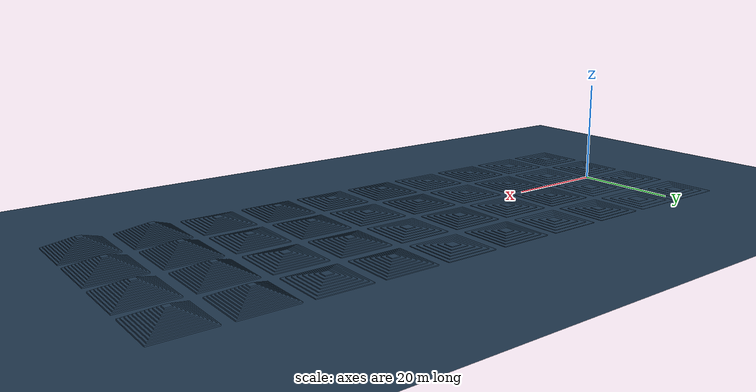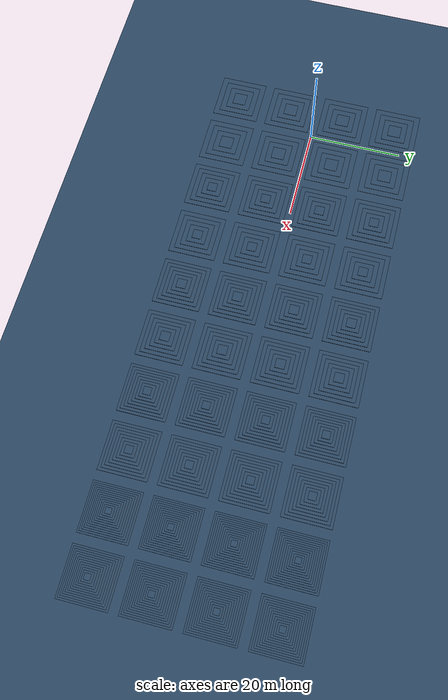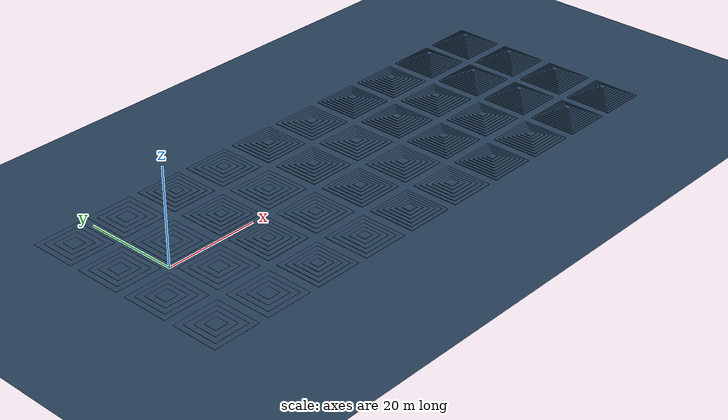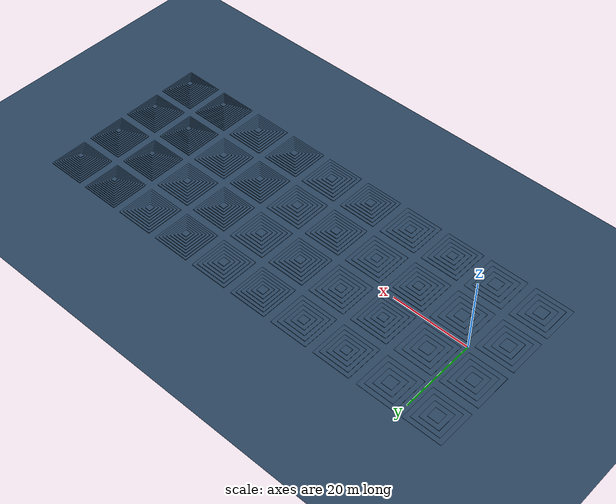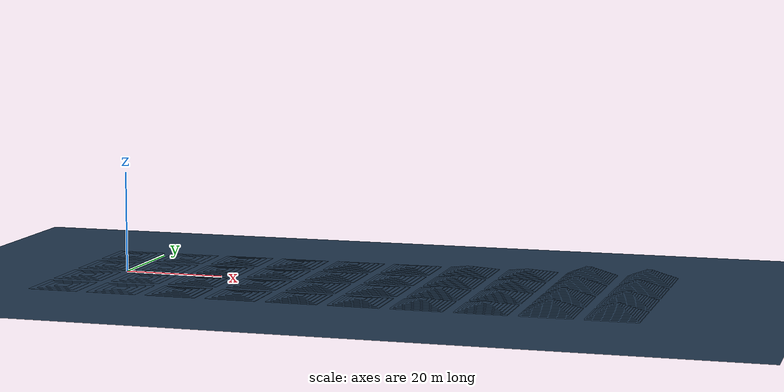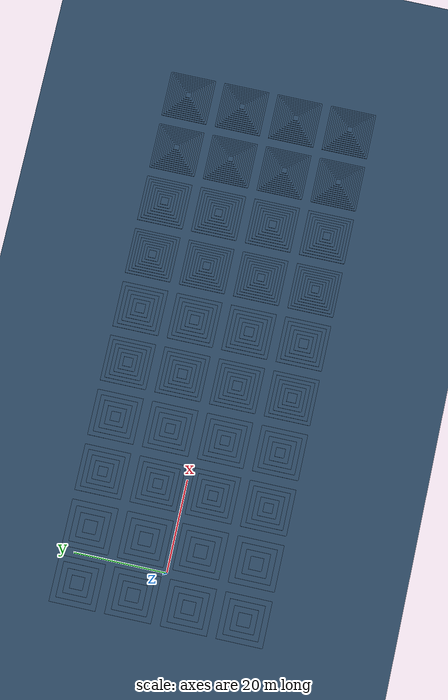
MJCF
<mujoco>
    <extension>
        <plugin plugin="mujoco.sdf.torus">
            <instance name="torus">
                <config key="radius1" value="0.077103"/>
                <config key="radius2" value="0.03"/>
            </instance>
        </plugin>
    </extension>

    <default>
        <default class="kyon_all">
            <joint damping="1.7" armature="0.215" frictionloss="5"/>
            <geom condim="3" solref="0.005 1.2" solimp="0.995 0.995 0.001 0.5 2" friction="0.7 0.005 0.001"/>
        </default>
        <default class="kyon_wheel">
            <joint damping="0.01" armature="0.1" frictionloss="0.01"/>
            <geom condim="3" solref="0.005 1.2" solimp="0.995 0.995 0.001 0.5 2" friction="0.7 0.005 0.001"/>
        </default>
        <default class="terrain">
            <geom solref="0.004 1.2" solimp="0.995 0.995 0.001 0.5 2" friction="0.7 0.005 0.001" type="plane" material="grid"/>
        </default>
    </default>

    <asset>
        <mesh name="torus">
            <plugin instance="torus"/>
        </mesh>

        <texture type="skybox" builtin="gradient" rgb1=".3 .5 .7" rgb2="0 0 0" width="512" height="512"/>
        <texture name="body" type="cube" builtin="flat" mark="cross" width="127" height="1278" rgb1="0.8 0.6 0.4" rgb2="0.8 0.6 0.4" markrgb="1 1 1" random="0.01"/>
        <material name="body" texture="body" texuniform="true" rgba="0.8 0.6 .4 1"/>
        <texture name="grid" type="2d" builtin="checker" width="512" height="512" rgb1=".1 .2 .3" rgb2=".2 .3 .4"/>
        <material name="grid" texture="grid" texrepeat="1 1" texuniform="true" reflectance=".2"/>
    </asset>
    <worldbody>
        <geom name="floor_0" size="0 0 .05" pos="0 0 0" type="plane" material="grid" condim="3" group="0" friction="0.6"/>
        <geom name="floor_1" size="0 0 .05" pos="0 0 0" type="plane" material="grid" condim="3" group="1" friction="0.6"/>
        <body name="staircourse" pos="0 0 0">
      <!-- Level 0 -->
      <body name="pyramid_lvl0_1" pos="-6 6 0">
        <geom name="lvl0_step_1_0_1" type="box" size="5.0 5.0 0.02" material="grid" pos="0 0 0.02" class="terrain"/>
        <geom name="lvl0_step_2_0_1" type="box" size="3.8 3.8 0.02" material="grid" pos="0 0 0.06" class="terrain"/>
        <geom name="lvl0_step_3_0_1" type="box" size="2.6 2.6 0.02" material="grid" pos="0 0 0.10" class="terrain"/>
        <geom name="lvl0_step_4_0_1" type="box" size="1.4 1.4 0.02" material="grid" pos="0 0 0.14" class="terrain"/>
      </body>
      <body name="pyramid_lvl0_2" pos="-6 -6 0">
        <geom name="lvl0_step_1_0_2" type="box" size="5.0 5.0 0.02" material="grid" pos="0 0 0.02" class="terrain"/>
        <geom name="lvl0_step_2_0_2" type="box" size="3.8 3.8 0.02" material="grid" pos="0 0 0.06" class="terrain"/>
        <geom name="lvl0_step_3_0_2" type="box" size="2.6 2.6 0.02" material="grid" pos="0 0 0.10" class="terrain"/>
        <geom name="lvl0_step_4_0_2" type="box" size="1.4 1.4 0.02" material="grid" pos="0 0 0.14" class="terrain"/>
      </body>
      <body name="pyramid_lvl0_3" pos="6 -6 0">
        <geom name="lvl0_step_1_0_3" type="box" size="5.0 5.0 0.02" material="grid" pos="0 0 0.02" class="terrain"/>
        <geom name="lvl0_step_2_0_3" type="box" size="3.8 3.8 0.02" material="grid" pos="0 0 0.06" class="terrain"/>
        <geom name="lvl0_step_3_0_3" type="box" size="2.6 2.6 0.02" material="grid" pos="0 0 0.10" class="terrain"/>
        <geom name="lvl0_step_4_0_3" type="box" size="1.4 1.4 0.02" material="grid" pos="0 0 0.14" class="terrain"/>
      </body>
      <body name="pyramid_lvl0_4" pos="6 6 0">
        <geom name="lvl0_step_1_0_4" type="box" size="5.0 5.0 0.02" material="grid" pos="0 0 0.02" class="terrain"/>
        <geom name="lvl0_step_2_0_4" type="box" size="3.8 3.8 0.02" material="grid" pos="0 0 0.06" class="terrain"/>
        <geom name="lvl0_step_3_0_4" type="box" size="2.6 2.6 0.02" material="grid" pos="0 0 0.10" class="terrain"/>
        <geom name="lvl0_step_4_0_4" type="box" size="1.4 1.4 0.02" material="grid" pos="0 0 0.14" class="terrain"/>
      </body>
      <body name="pyramid_lvl0_5" pos="-6 18 0">
        <geom name="lvl0_step_1_0_5" type="box" size="5.0 5.0 0.02" material="grid" pos="0 0 0.02" class="terrain"/>
        <geom name="lvl0_step_2_0_5" type="box" size="3.8 3.8 0.02" material="grid" pos="0 0 0.06" class="terrain"/>
        <geom name="lvl0_step_3_0_5" type="box" size="2.6 2.6 0.02" material="grid" pos="0 0 0.10" class="terrain"/>
        <geom name="lvl0_step_4_0_5" type="box" size="1.4 1.4 0.02" material="grid" pos="0 0 0.14" class="terrain"/>
      </body>
      <body name="pyramid_lvl0_6" pos="6 18 0">
        <geom name="lvl0_step_1_0_6" type="box" size="5.0 5.0 0.02" material="grid" pos="0 0 0.02" class="terrain"/>
        <geom name="lvl0_step_2_0_6" type="box" size="3.8 3.8 0.02" material="grid" pos="0 0 0.06" class="terrain"/>
        <geom name="lvl0_step_3_0_6" type="box" size="2.6 2.6 0.02" material="grid" pos="0 0 0.10" class="terrain"/>
        <geom name="lvl0_step_4_0_6" type="box" size="1.4 1.4 0.02" material="grid" pos="0 0 0.14" class="terrain"/>
      </body>
      <body name="pyramid_lvl0_7" pos="6 -18 0">
        <geom name="lvl0_step_1_0_7" type="box" size="5.0 5.0 0.02" material="grid" pos="0 0 0.02" class="terrain"/>
        <geom name="lvl0_step_2_0_7" type="box" size="3.8 3.8 0.02" material="grid" pos="0 0 0.06" class="terrain"/>
        <geom name="lvl0_step_3_0_7" type="box" size="2.6 2.6 0.02" material="grid" pos="0 0 0.10" class="terrain"/>
        <geom name="lvl0_step_4_0_7" type="box" size="1.4 1.4 0.02" material="grid" pos="0 0 0.14" class="terrain"/>
      </body>
      <body name="pyramid_lvl0_8" pos="-6 -18 0">
        <geom name="lvl0_step_1_0_8" type="box" size="5.0 5.0 0.02" material="grid" pos="0 0 0.02" class="terrain"/>
        <geom name="lvl0_step_2_0_8" type="box" size="3.8 3.8 0.02" material="grid" pos="0 0 0.06" class="terrain"/>
        <geom name="lvl0_step_3_0_8" type="box" size="2.6 2.6 0.02" material="grid" pos="0 0 0.10" class="terrain"/>
        <geom name="lvl0_step_4_0_8" type="box" size="1.4 1.4 0.02" material="grid" pos="0 0 0.14" class="terrain"/>
      </body>
      <!-- Level 1: low risers, generous treads, fewer steps -->
      <body name="pyramid_lvl1_1" pos="18 6 0">
        <geom name="lvl1_step_1_1" type="box" size="5.0 5.0 0.04" material="grid" pos="0 0 0.04" class="terrain"/>
        <geom name="lvl1_step_2_1" type="box" size="4.0 4.0 0.04" material="grid" pos="0 0 0.12" class="terrain"/>
        <geom name="lvl1_step_3_1" type="box" size="3.0 3.0 0.04" material="grid" pos="0 0 0.20" class="terrain"/>
        <geom name="lvl1_step_4_1" type="box" size="2.0 2.0 0.04" material="grid" pos="0 0 0.28" class="terrain"/>
        <geom name="lvl1_step_5_1" type="box" size="1.0 1.0 0.04" material="grid" pos="0 0 0.36" class="terrain"/>
      </body>
      <body name="pyramid_lvl1_2" pos="18 -6 0">
        <geom name="lvl1_step_1_1_2" type="box" size="5.0 5.0 0.04" material="grid" pos="0 0 0.04" class="terrain"/>
        <geom name="lvl1_step_2_1_2" type="box" size="4.0 4.0 0.04" material="grid" pos="0 0 0.12" class="terrain"/>
        <geom name="lvl1_step_3_1_2" type="box" size="3.0 3.0 0.04" material="grid" pos="0 0 0.20" class="terrain"/>
        <geom name="lvl1_step_4_1_2" type="box" size="2.0 2.0 0.04" material="grid" pos="0 0 0.28" class="terrain"/>
        <geom name="lvl1_step_5_1_2" type="box" size="1.0 1.0 0.04" material="grid" pos="0 0 0.36" class="terrain"/>
      </body>
      <body name="pyramid_lvl1_3" pos="30 -6 0">
        <geom name="lvl1_step_1_1_3" type="box" size="5.0 5.0 0.04" material="grid" pos="0 0 0.04" class="terrain"/>
        <geom name="lvl1_step_2_1_3" type="box" size="4.0 4.0 0.04" material="grid" pos="0 0 0.12" class="terrain"/>
        <geom name="lvl1_step_3_1_3" type="box" size="3.0 3.0 0.04" material="grid" pos="0 0 0.20" class="terrain"/>
        <geom name="lvl1_step_4_1_3" type="box" size="2.0 2.0 0.04" material="grid" pos="0 0 0.28" class="terrain"/>
        <geom name="lvl1_step_5_1_3" type="box" size="1.0 1.0 0.04" material="grid" pos="0 0 0.36" class="terrain"/>
      </body>
      <body name="pyramid_lvl1_4" pos="30 6 0">
        <geom name="lvl1_step_1_1_4" type="box" size="5.0 5.0 0.04" material="grid" pos="0 0 0.04" class="terrain"/>
        <geom name="lvl1_step_2_1_4" type="box" size="4.0 4.0 0.04" material="grid" pos="0 0 0.12" class="terrain"/>
        <geom name="lvl1_step_3_1_4" type="box" size="3.0 3.0 0.04" material="grid" pos="0 0 0.20" class="terrain"/>
        <geom name="lvl1_step_4_1_4" type="box" size="2.0 2.0 0.04" material="grid" pos="0 0 0.28" class="terrain"/>
        <geom name="lvl1_step_5_1_4" type="box" size="1.0 1.0 0.04" material="grid" pos="0 0 0.36" class="terrain"/>
      </body>
      <body name="pyramid_lvl1_5" pos="18 18 0">
        <geom name="lvl1_step_1_1_5" type="box" size="5.0 5.0 0.04" material="grid" pos="0 0 0.04" class="terrain"/>
        <geom name="lvl1_step_2_1_5" type="box" size="4.0 4.0 0.04" material="grid" pos="0 0 0.12" class="terrain"/>
        <geom name="lvl1_step_3_1_5" type="box" size="3.0 3.0 0.04" material="grid" pos="0 0 0.20" class="terrain"/>
        <geom name="lvl1_step_4_1_5" type="box" size="2.0 2.0 0.04" material="grid" pos="0 0 0.28" class="terrain"/>
        <geom name="lvl1_step_5_1_5" type="box" size="1.0 1.0 0.04" material="grid" pos="0 0 0.36" class="terrain"/>
      </body>
      <body name="pyramid_lvl1_6" pos="30 18 0">
        <geom name="lvl1_step_1_1_6" type="box" size="5.0 5.0 0.04" material="grid" pos="0 0 0.04" class="terrain"/>
        <geom name="lvl1_step_2_1_6" type="box" size="4.0 4.0 0.04" material="grid" pos="0 0 0.12" class="terrain"/>
        <geom name="lvl1_step_3_1_6" type="box" size="3.0 3.0 0.04" material="grid" pos="0 0 0.20" class="terrain"/>
        <geom name="lvl1_step_4_1_6" type="box" size="2.0 2.0 0.04" material="grid" pos="0 0 0.28" class="terrain"/>
        <geom name="lvl1_step_5_1_6" type="box" size="1.0 1.0 0.04" material="grid" pos="0 0 0.36" class="terrain"/>
      </body>
      <body name="pyramid_lvl1_7" pos="18 -18 0">
        <geom name="lvl1_step_1_1_7" type="box" size="5.0 5.0 0.04" material="grid" pos="0 0 0.04" class="terrain"/>
        <geom name="lvl1_step_2_1_7" type="box" size="4.0 4.0 0.04" material="grid" pos="0 0 0.12" class="terrain"/>
        <geom name="lvl1_step_3_1_7" type="box" size="3.0 3.0 0.04" material="grid" pos="0 0 0.20" class="terrain"/>
        <geom name="lvl1_step_4_1_7" type="box" size="2.0 2.0 0.04" material="grid" pos="0 0 0.28" class="terrain"/>
        <geom name="lvl1_step_5_1_7" type="box" size="1.0 1.0 0.04" material="grid" pos="0 0 0.36" class="terrain"/>
      </body>
      <body name="pyramid_lvl1_8" pos="30 -18 0">
        <geom name="lvl1_step_1_1_8" type="box" size="5.0 5.0 0.04" material="grid" pos="0 0 0.04" class="terrain"/>
        <geom name="lvl1_step_2_1_8" type="box" size="4.0 4.0 0.04" material="grid" pos="0 0 0.12" class="terrain"/>
        <geom name="lvl1_step_3_1_8" type="box" size="3.0 3.0 0.04" material="grid" pos="0 0 0.20" class="terrain"/>
        <geom name="lvl1_step_4_1_8" type="box" size="2.0 2.0 0.04" material="grid" pos="0 0 0.28" class="terrain"/>
        <geom name="lvl1_step_5_1_8" type="box" size="1.0 1.0 0.04" material="grid" pos="0 0 0.36" class="terrain"/>
      </body>
      <!-- Level 2: medium risers, tighter treads, more steps -->
      <body name="pyramid_lvl2_1" pos="42 -6 0">
        <geom name="lvl2_step_1_2_1" type="box" size="5.0 5.0 0.06" material="grid" pos="0 0 0.06" class="terrain"/>
        <geom name="lvl2_step_2_2_1" type="box" size="4.2 4.2 0.06" material="grid" pos="0 0 0.18" class="terrain"/>
        <geom name="lvl2_step_3_2_1" type="box" size="3.4 3.4 0.06" material="grid" pos="0 0 0.30" class="terrain"/>
        <geom name="lvl2_step_4_2_1" type="box" size="2.6 2.6 0.06" material="grid" pos="0 0 0.42" class="terrain"/>
        <geom name="lvl2_step_5_2_1" type="box" size="1.8 1.8 0.06" material="grid" pos="0 0 0.54" class="terrain"/>
        <geom name="lvl2_step_6_2_1" type="box" size="1.0 1.0 0.06" material="grid" pos="0 0 0.66" class="terrain"/>
      </body>
      <body name="pyramid_lvl2_2" pos="42 6 0">
        <geom name="lvl2_step_1_2_2" type="box" size="5.0 5.0 0.06" material="grid" pos="0 0 0.06" class="terrain"/>
        <geom name="lvl2_step_2_2_2" type="box" size="4.2 4.2 0.06" material="grid" pos="0 0 0.18" class="terrain"/>
        <geom name="lvl2_step_3_2_2" type="box" size="3.4 3.4 0.06" material="grid" pos="0 0 0.30" class="terrain"/>
        <geom name="lvl2_step_4_2_2" type="box" size="2.6 2.6 0.06" material="grid" pos="0 0 0.42" class="terrain"/>
        <geom name="lvl2_step_5_2_2" type="box" size="1.8 1.8 0.06" material="grid" pos="0 0 0.54" class="terrain"/>
        <geom name="lvl2_step_6_2_2" type="box" size="1.0 1.0 0.06" material="grid" pos="0 0 0.66" class="terrain"/>
      </body>
      <body name="pyramid_lvl2_3" pos="54 -6 0">
        <geom name="lvl2_step_1_2_3" type="box" size="5.0 5.0 0.06" material="grid" pos="0 0 0.06" class="terrain"/>
        <geom name="lvl2_step_2_2_3" type="box" size="4.2 4.2 0.06" material="grid" pos="0 0 0.18" class="terrain"/>
        <geom name="lvl2_step_3_2_3" type="box" size="3.4 3.4 0.06" material="grid" pos="0 0 0.30" class="terrain"/>
        <geom name="lvl2_step_4_2_3" type="box" size="2.6 2.6 0.06" material="grid" pos="0 0 0.42" class="terrain"/>
        <geom name="lvl2_step_5_2_3" type="box" size="1.8 1.8 0.06" material="grid" pos="0 0 0.54" class="terrain"/>
        <geom name="lvl2_step_6_2_3" type="box" size="1.0 1.0 0.06" material="grid" pos="0 0 0.66" class="terrain"/>
      </body>
      <body name="pyramid_lvl2_4" pos="54 6 0">
        <geom name="lvl2_step_1_2_4" type="box" size="5.0 5.0 0.06" material="grid" pos="0 0 0.06" class="terrain"/>
        <geom name="lvl2_step_2_2_4" type="box" size="4.2 4.2 0.06" material="grid" pos="0 0 0.18" class="terrain"/>
        <geom name="lvl2_step_3_2_4" type="box" size="3.4 3.4 0.06" material="grid" pos="0 0 0.30" class="terrain"/>
        <geom name="lvl2_step_4_2_4" type="box" size="2.6 2.6 0.06" material="grid" pos="0 0 0.42" class="terrain"/>
        <geom name="lvl2_step_5_2_4" type="box" size="1.8 1.8 0.06" material="grid" pos="0 0 0.54" class="terrain"/>
        <geom name="lvl2_step_6_2_4" type="box" size="1.0 1.0 0.06" material="grid" pos="0 0 0.66" class="terrain"/>
      </body>
      <body name="pyramid_lvl2_5" pos="42 18 0">
        <geom name="lvl2_step_1_2_5" type="box" size="5.0 5.0 0.06" material="grid" pos="0 0 0.06" class="terrain"/>
        <geom name="lvl2_step_2_2_5" type="box" size="4.2 4.2 0.06" material="grid" pos="0 0 0.18" class="terrain"/>
        <geom name="lvl2_step_3_2_5" type="box" size="3.4 3.4 0.06" material="grid" pos="0 0 0.30" class="terrain"/>
        <geom name="lvl2_step_4_2_5" type="box" size="2.6 2.6 0.06" material="grid" pos="0 0 0.42" class="terrain"/>
        <geom name="lvl2_step_5_2_5" type="box" size="1.8 1.8 0.06" material="grid" pos="0 0 0.54" class="terrain"/>
        <geom name="lvl2_step_6_2_5" type="box" size="1.0 1.0 0.06" material="grid" pos="0 0 0.66" class="terrain"/>
      </body>
      <body name="pyramid_lvl2_6" pos="54 18 0">
        <geom name="lvl2_step_1_2_6" type="box" size="5.0 5.0 0.06" material="grid" pos="0 0 0.06" class="terrain"/>
        <geom name="lvl2_step_2_2_6" type="box" size="4.2 4.2 0.06" material="grid" pos="0 0 0.18" class="terrain"/>
        <geom name="lvl2_step_3_2_6" type="box" size="3.4 3.4 0.06" material="grid" pos="0 0 0.30" class="terrain"/>
        <geom name="lvl2_step_4_2_6" type="box" size="2.6 2.6 0.06" material="grid" pos="0 0 0.42" class="terrain"/>
        <geom name="lvl2_step_5_2_6" type="box" size="1.8 1.8 0.06" material="grid" pos="0 0 0.54" class="terrain"/>
        <geom name="lvl2_step_6_2_6" type="box" size="1.0 1.0 0.06" material="grid" pos="0 0 0.66" class="terrain"/>
      </body>
      <body name="pyramid_lvl2_7" pos="42 -18 0">
        <geom name="lvl2_step_1_2_7" type="box" size="5.0 5.0 0.06" material="grid" pos="0 0 0.06" class="terrain"/>
        <geom name="lvl2_step_2_2_7" type="box" size="4.2 4.2 0.06" material="grid" pos="0 0 0.18" class="terrain"/>
        <geom name="lvl2_step_3_2_7" type="box" size="3.4 3.4 0.06" material="grid" pos="0 0 0.30" class="terrain"/>
        <geom name="lvl2_step_4_2_7" type="box" size="2.6 2.6 0.06" material="grid" pos="0 0 0.42" class="terrain"/>
        <geom name="lvl2_step_5_2_7" type="box" size="1.8 1.8 0.06" material="grid" pos="0 0 0.54" class="terrain"/>
        <geom name="lvl2_step_6_2_7" type="box" size="1.0 1.0 0.06" material="grid" pos="0 0 0.66" class="terrain"/>
      </body>
      <body name="pyramid_lvl2_8" pos="54 -18 0">
        <geom name="lvl2_step_1_2_8" type="box" size="5.0 5.0 0.06" material="grid" pos="0 0 0.06" class="terrain"/>
        <geom name="lvl2_step_2_2_8" type="box" size="4.2 4.2 0.06" material="grid" pos="0 0 0.18" class="terrain"/>
        <geom name="lvl2_step_3_2_8" type="box" size="3.4 3.4 0.06" material="grid" pos="0 0 0.30" class="terrain"/>
        <geom name="lvl2_step_4_2_8" type="box" size="2.6 2.6 0.06" material="grid" pos="0 0 0.42" class="terrain"/>
        <geom name="lvl2_step_5_2_8" type="box" size="1.8 1.8 0.06" material="grid" pos="0 0 0.54" class="terrain"/>
        <geom name="lvl2_step_6_2_8" type="box" size="1.0 1.0 0.06" material="grid" pos="0 0 0.66" class="terrain"/>
      </body>
      <!-- Level 3: high risers, minimal tread width, six steps -->
      <body name="pyramid_lvl3_1" pos="66 6 0">
        <geom name="lvl3_step_1_3_1" type="box" size="5.0 5.0 0.08" material="grid" pos="0 0 0.08" class="terrain"/>
        <geom name="lvl3_step_2_3_1" type="box" size="4.4 4.4 0.08" material="grid" pos="0 0 0.24" class="terrain"/>
        <geom name="lvl3_step_3_3_1" type="box" size="3.8 3.8 0.08" material="grid" pos="0 0 0.40" class="terrain"/>
        <geom name="lvl3_step_4_3_1" type="box" size="3.2 3.2 0.08" material="grid" pos="0 0 0.56" class="terrain"/>
        <geom name="lvl3_step_5_3_1" type="box" size="2.6 2.6 0.08" material="grid" pos="0 0 0.72" class="terrain"/>
        <geom name="lvl3_step_6_3_1" type="box" size="2.0 2.0 0.08" material="grid" pos="0 0 0.88" class="terrain"/>
        <geom name="lvl3_step_7_3_1" type="box" size="1.4 1.4 0.08" material="grid" pos="0 0 1.04" class="terrain"/>
        <geom name="lvl3_step_8_3_1" type="box" size="0.8 0.8 0.08" material="grid" pos="0 0 1.20" class="terrain"/>
      </body>
      <body name="pyramid_lvl3_2" pos="66 -6 0">
        <geom name="lvl3_step_1_3_2" type="box" size="5.0 5.0 0.08" material="grid" pos="0 0 0.08" class="terrain"/>
        <geom name="lvl3_step_2_3_2" type="box" size="4.4 4.4 0.08" material="grid" pos="0 0 0.24" class="terrain"/>
        <geom name="lvl3_step_3_3_2" type="box" size="3.8 3.8 0.08" material="grid" pos="0 0 0.40" class="terrain"/>
        <geom name="lvl3_step_4_3_2" type="box" size="3.2 3.2 0.08" material="grid" pos="0 0 0.56" class="terrain"/>
        <geom name="lvl3_step_5_3_2" type="box" size="2.6 2.6 0.08" material="grid" pos="0 0 0.72" class="terrain"/>
        <geom name="lvl3_step_6_3_2" type="box" size="2.0 2.0 0.08" material="grid" pos="0 0 0.88" class="terrain"/>
        <geom name="lvl3_step_7_3_2" type="box" size="1.4 1.4 0.08" material="grid" pos="0 0 1.04" class="terrain"/>
        <geom name="lvl3_step_8_3_2" type="box" size="0.8 0.8 0.08" material="grid" pos="0 0 1.20" class="terrain"/>
      </body>
      <body name="pyramid_lvl3_3" pos="78 6 0">
        <geom name="lvl3_step_1_3_3" type="box" size="5.0 5.0 0.08" material="grid" pos="0 0 0.08" class="terrain"/>
        <geom name="lvl3_step_2_3_3" type="box" size="4.4 4.4 0.08" material="grid" pos="0 0 0.24" class="terrain"/>
        <geom name="lvl3_step_3_3_3" type="box" size="3.8 3.8 0.08" material="grid" pos="0 0 0.40" class="terrain"/>
        <geom name="lvl3_step_4_3_3" type="box" size="3.2 3.2 0.08" material="grid" pos="0 0 0.56" class="terrain"/>
        <geom name="lvl3_step_5_3_3" type="box" size="2.6 2.6 0.08" material="grid" pos="0 0 0.72" class="terrain"/>
        <geom name="lvl3_step_6_3_3" type="box" size="2.0 2.0 0.08" material="grid" pos="0 0 0.88" class="terrain"/>
        <geom name="lvl3_step_7_3_3" type="box" size="1.4 1.4 0.08" material="grid" pos="0 0 1.04" class="terrain"/>
        <geom name="lvl3_step_8_3_3" type="box" size="0.8 0.8 0.08" material="grid" pos="0 0 1.20" class="terrain"/>
      </body>
      <body name="pyramid_lvl3_4" pos="78 -6 0">
        <geom name="lvl3_step_1_3_4" type="box" size="5.0 5.0 0.08" material="grid" pos="0 0 0.08" class="terrain"/>
        <geom name="lvl3_step_2_3_4" type="box" size="4.4 4.4 0.08" material="grid" pos="0 0 0.24" class="terrain"/>
        <geom name="lvl3_step_3_3_4" type="box" size="3.8 3.8 0.08" material="grid" pos="0 0 0.40" class="terrain"/>
        <geom name="lvl3_step_4_3_4" type="box" size="3.2 3.2 0.08" material="grid" pos="0 0 0.56" class="terrain"/>
        <geom name="lvl3_step_5_3_4" type="box" size="2.6 2.6 0.08" material="grid" pos="0 0 0.72" class="terrain"/>
        <geom name="lvl3_step_6_3_4" type="box" size="2.0 2.0 0.08" material="grid" pos="0 0 0.88" class="terrain"/>
        <geom name="lvl3_step_7_3_4" type="box" size="1.4 1.4 0.08" material="grid" pos="0 0 1.04" class="terrain"/>
        <geom name="lvl3_step_8_3_4" type="box" size="0.8 0.8 0.08" material="grid" pos="0 0 1.20" class="terrain"/>
      </body>
      <body name="pyramid_lvl3_5" pos="66 18 0">
        <geom name="lvl3_step_1_3_5" type="box" size="5.0 5.0 0.08" material="grid" pos="0 0 0.08" class="terrain"/>
        <geom name="lvl3_step_2_3_5" type="box" size="4.4 4.4 0.08" material="grid" pos="0 0 0.24" class="terrain"/>
        <geom name="lvl3_step_3_3_5" type="box" size="3.8 3.8 0.08" material="grid" pos="0 0 0.40" class="terrain"/>
        <geom name="lvl3_step_4_3_5" type="box" size="3.2 3.2 0.08" material="grid" pos="0 0 0.56" class="terrain"/>
        <geom name="lvl3_step_5_3_5" type="box" size="2.6 2.6 0.08" material="grid" pos="0 0 0.72" class="terrain"/>
        <geom name="lvl3_step_6_3_5" type="box" size="2.0 2.0 0.08" material="grid" pos="0 0 0.88" class="terrain"/>
        <geom name="lvl3_step_7_3_5" type="box" size="1.4 1.4 0.08" material="grid" pos="0 0 1.04" class="terrain"/>
        <geom name="lvl3_step_8_3_5" type="box" size="0.8 0.8 0.08" material="grid" pos="0 0 1.20" class="terrain"/>
      </body>
      <body name="pyramid_lvl3_6" pos="78 18 0">
        <geom name="lvl3_step_1_3_6" type="box" size="5.0 5.0 0.08" material="grid" pos="0 0 0.08" class="terrain"/>
        <geom name="lvl3_step_2_3_6" type="box" size="4.4 4.4 0.08" material="grid" pos="0 0 0.24" class="terrain"/>
        <geom name="lvl3_step_3_3_6" type="box" size="3.8 3.8 0.08" material="grid" pos="0 0 0.40" class="terrain"/>
        <geom name="lvl3_step_4_3_6" type="box" size="3.2 3.2 0.08" material="grid" pos="0 0 0.56" class="terrain"/>
        <geom name="lvl3_step_5_3_6" type="box" size="2.6 2.6 0.08" material="grid" pos="0 0 0.72" class="terrain"/>
        <geom name="lvl3_step_6_3_6" type="box" size="2.0 2.0 0.08" material="grid" pos="0 0 0.88" class="terrain"/>
        <geom name="lvl3_step_7_3_6" type="box" size="1.4 1.4 0.08" material="grid" pos="0 0 1.04" class="terrain"/>
        <geom name="lvl3_step_8_3_6" type="box" size="0.8 0.8 0.08" material="grid" pos="0 0 1.20" class="terrain"/>
      </body>
      <body name="pyramid_lvl3_7" pos="66 -18 0">
        <geom name="lvl3_step_1_3_7" type="box" size="5.0 5.0 0.08" material="grid" pos="0 0 0.08" class="terrain"/>
        <geom name="lvl3_step_2_3_7" type="box" size="4.4 4.4 0.08" material="grid" pos="0 0 0.24" class="terrain"/>
        <geom name="lvl3_step_3_3_7" type="box" size="3.8 3.8 0.08" material="grid" pos="0 0 0.40" class="terrain"/>
        <geom name="lvl3_step_4_3_7" type="box" size="3.2 3.2 0.08" material="grid" pos="0 0 0.56" class="terrain"/>
        <geom name="lvl3_step_5_3_7" type="box" size="2.6 2.6 0.08" material="grid" pos="0 0 0.72" class="terrain"/>
        <geom name="lvl3_step_6_3_7" type="box" size="2.0 2.0 0.08" material="grid" pos="0 0 0.88" class="terrain"/>
        <geom name="lvl3_step_7_3_7" type="box" size="1.4 1.4 0.08" material="grid" pos="0 0 1.04" class="terrain"/>
        <geom name="lvl3_step_8_3_7" type="box" size="0.8 0.8 0.08" material="grid" pos="0 0 1.20" class="terrain"/>
      </body>
      <body name="pyramid_lvl3_8" pos="78 -18 0">
        <geom name="lvl3_step_1_3_8" type="box" size="5.0 5.0 0.08" material="grid" pos="0 0 0.08" class="terrain"/>
        <geom name="lvl3_step_2_3_8" type="box" size="4.4 4.4 0.08" material="grid" pos="0 0 0.24" class="terrain"/>
        <geom name="lvl3_step_3_3_8" type="box" size="3.8 3.8 0.08" material="grid" pos="0 0 0.40" class="terrain"/>
        <geom name="lvl3_step_4_3_8" type="box" size="3.2 3.2 0.08" material="grid" pos="0 0 0.56" class="terrain"/>
        <geom name="lvl3_step_5_3_8" type="box" size="2.6 2.6 0.08" material="grid" pos="0 0 0.72" class="terrain"/>
        <geom name="lvl3_step_6_3_8" type="box" size="2.0 2.0 0.08" material="grid" pos="0 0 0.88" class="terrain"/>
        <geom name="lvl3_step_7_3_8" type="box" size="1.4 1.4 0.08" material="grid" pos="0 0 1.04" class="terrain"/>
        <geom name="lvl3_step_8_3_8" type="box" size="0.8 0.8 0.08" material="grid" pos="0 0 1.20" class="terrain"/>
      </body>
      <!-- Level 4: extreme risers, very tight treads, seven steps -->
      <body name="pyramid_lvl4_1" pos="90 6 0">
        <geom name="lvl4_step_1_4_1" type="box" size="5.0 5.0 0.1" material="grid" pos="0 0 0.10" class="terrain"/>
        <geom name="lvl4_step_2_4_1" type="box" size="4.6 4.6 0.1" material="grid" pos="0 0 0.30" class="terrain"/>
        <geom name="lvl4_step_3_4_1" type="box" size="4.2 4.2 0.1" material="grid" pos="0 0 0.50" class="terrain"/>
        <geom name="lvl4_step_4_4_1" type="box" size="3.8 3.8 0.1" material="grid" pos="0 0 0.70" class="terrain"/>
        <geom name="lvl4_step_5_4_1" type="box" size="3.4 3.4 0.1" material="grid" pos="0 0 0.90" class="terrain"/>
        <geom name="lvl4_step_6_4_1" type="box" size="3.0 3.0 0.1" material="grid" pos="0 0 1.10" class="terrain"/>
        <geom name="lvl4_step_7_4_1" type="box" size="2.6 2.6 0.1" material="grid" pos="0 0 1.30" class="terrain"/>
        <geom name="lvl4_step_8_4_1" type="box" size="2.2 2.2 0.1" material="grid" pos="0 0 1.50" class="terrain"/>
        <geom name="lvl4_step_9_4_1" type="box" size="1.8 1.8 0.1" material="grid" pos="0 0 1.70" class="terrain"/>
        <geom name="lvl4_step_10_4_1" type="box" size="1.4 1.4 0.1" material="grid" pos="0 0 1.90" class="terrain"/>
        <geom name="lvl4_step_11_4_1" type="box" size="1.0 1.0 0.1" material="grid" pos="0 0 2.10" class="terrain"/>
        <geom name="lvl4_step_12_4_1" type="box" size="0.6 0.6 0.1" material="grid" pos="0 0 2.30" class="terrain"/>
      </body>
      <body name="pyramid_lvl4_2" pos="90 -6 0">
        <geom name="lvl4_step_1_4_2" type="box" size="5.0 5.0 0.1" material="grid" pos="0 0 0.10" class="terrain"/>
        <geom name="lvl4_step_2_4_2" type="box" size="4.6 4.6 0.1" material="grid" pos="0 0 0.30" class="terrain"/>
        <geom name="lvl4_step_3_4_2" type="box" size="4.2 4.2 0.1" material="grid" pos="0 0 0.50" class="terrain"/>
        <geom name="lvl4_step_4_4_2" type="box" size="3.8 3.8 0.1" material="grid" pos="0 0 0.70" class="terrain"/>
        <geom name="lvl4_step_5_4_2" type="box" size="3.4 3.4 0.1" material="grid" pos="0 0 0.90" class="terrain"/>
        <geom name="lvl4_step_6_4_2" type="box" size="3.0 3.0 0.1" material="grid" pos="0 0 1.10" class="terrain"/>
        <geom name="lvl4_step_7_4_2" type="box" size="2.6 2.6 0.1" material="grid" pos="0 0 1.30" class="terrain"/>
        <geom name="lvl4_step_8_4_2" type="box" size="2.2 2.2 0.1" material="grid" pos="0 0 1.50" class="terrain"/>
        <geom name="lvl4_step_9_4_2" type="box" size="1.8 1.8 0.1" material="grid" pos="0 0 1.70" class="terrain"/>
        <geom name="lvl4_step_10_4_2" type="box" size="1.4 1.4 0.1" material="grid" pos="0 0 1.90" class="terrain"/>
        <geom name="lvl4_step_11_4_2" type="box" size="1.0 1.0 0.1" material="grid" pos="0 0 2.10" class="terrain"/>
        <geom name="lvl4_step_12_4_2" type="box" size="0.6 0.6 0.1" material="grid" pos="0 0 2.30" class="terrain"/>
      </body>
      <body name="pyramid_lvl4_3" pos="102 6 0">
        <geom name="lvl4_step_1_4_3" type="box" size="5.0 5.0 0.1" material="grid" pos="0 0 0.10" class="terrain"/>
        <geom name="lvl4_step_2_4_3" type="box" size="4.6 4.6 0.1" material="grid" pos="0 0 0.30" class="terrain"/>
        <geom name="lvl4_step_3_4_3" type="box" size="4.2 4.2 0.1" material="grid" pos="0 0 0.50" class="terrain"/>
        <geom name="lvl4_step_4_4_3" type="box" size="3.8 3.8 0.1" material="grid" pos="0 0 0.70" class="terrain"/>
        <geom name="lvl4_step_5_4_3" type="box" size="3.4 3.4 0.1" material="grid" pos="0 0 0.90" class="terrain"/>
        <geom name="lvl4_step_6_4_3" type="box" size="3.0 3.0 0.1" material="grid" pos="0 0 1.10" class="terrain"/>
        <geom name="lvl4_step_7_4_3" type="box" size="2.6 2.6 0.1" material="grid" pos="0 0 1.30" class="terrain"/>
        <geom name="lvl4_step_8_4_3" type="box" size="2.2 2.2 0.1" material="grid" pos="0 0 1.50" class="terrain"/>
        <geom name="lvl4_step_9_4_3" type="box" size="1.8 1.8 0.1" material="grid" pos="0 0 1.70" class="terrain"/>
        <geom name="lvl4_step_10_4_3" type="box" size="1.4 1.4 0.1" material="grid" pos="0 0 1.90" class="terrain"/>
        <geom name="lvl4_step_11_4_3" type="box" size="1.0 1.0 0.1" material="grid" pos="0 0 2.10" class="terrain"/>
        <geom name="lvl4_step_12_4_3" type="box" size="0.6 0.6 0.1" material="grid" pos="0 0 2.30" class="terrain"/>
      </body>
      <body name="pyramid_lvl4_4" pos="102 -6 0">
        <geom name="lvl4_step_1_4_4" type="box" size="5.0 5.0 0.1" material="grid" pos="0 0 0.10" class="terrain"/>
        <geom name="lvl4_step_2_4_4" type="box" size="4.6 4.6 0.1" material="grid" pos="0 0 0.30" class="terrain"/>
        <geom name="lvl4_step_3_4_4" type="box" size="4.2 4.2 0.1" material="grid" pos="0 0 0.50" class="terrain"/>
        <geom name="lvl4_step_4_4_4" type="box" size="3.8 3.8 0.1" material="grid" pos="0 0 0.70" class="terrain"/>
        <geom name="lvl4_step_5_4_4" type="box" size="3.4 3.4 0.1" material="grid" pos="0 0 0.90" class="terrain"/>
        <geom name="lvl4_step_6_4_4" type="box" size="3.0 3.0 0.1" material="grid" pos="0 0 1.10" class="terrain"/>
        <geom name="lvl4_step_7_4_4" type="box" size="2.6 2.6 0.1" material="grid" pos="0 0 1.30" class="terrain"/>
        <geom name="lvl4_step_8_4_4" type="box" size="2.2 2.2 0.1" material="grid" pos="0 0 1.50" class="terrain"/>
        <geom name="lvl4_step_9_4_4" type="box" size="1.8 1.8 0.1" material="grid" pos="0 0 1.70" class="terrain"/>
        <geom name="lvl4_step_10_4_4" type="box" size="1.4 1.4 0.1" material="grid" pos="0 0 1.90" class="terrain"/>
        <geom name="lvl4_step_11_4_4" type="box" size="1.0 1.0 0.1" material="grid" pos="0 0 2.10" class="terrain"/>
        <geom name="lvl4_step_12_4_4" type="box" size="0.6 0.6 0.1" material="grid" pos="0 0 2.30" class="terrain"/>
      </body>
      <body name="pyramid_lvl4_5" pos="90 18 0">
        <geom name="lvl4_step_1_4_5" type="box" size="5.0 5.0 0.1" material="grid" pos="0 0 0.10" class="terrain"/>
        <geom name="lvl4_step_2_4_5" type="box" size="4.6 4.6 0.1" material="grid" pos="0 0 0.30" class="terrain"/>
        <geom name="lvl4_step_3_4_5" type="box" size="4.2 4.2 0.1" material="grid" pos="0 0 0.50" class="terrain"/>
        <geom name="lvl4_step_4_4_5" type="box" size="3.8 3.8 0.1" material="grid" pos="0 0 0.70" class="terrain"/>
        <geom name="lvl4_step_5_4_5" type="box" size="3.4 3.4 0.1" material="grid" pos="0 0 0.90" class="terrain"/>
        <geom name="lvl4_step_6_4_5" type="box" size="3.0 3.0 0.1" material="grid" pos="0 0 1.10" class="terrain"/>
        <geom name="lvl4_step_7_4_5" type="box" size="2.6 2.6 0.1" material="grid" pos="0 0 1.30" class="terrain"/>
        <geom name="lvl4_step_8_4_5" type="box" size="2.2 2.2 0.1" material="grid" pos="0 0 1.50" class="terrain"/>
        <geom name="lvl4_step_9_4_5" type="box" size="1.8 1.8 0.1" material="grid" pos="0 0 1.70" class="terrain"/>
        <geom name="lvl4_step_10_4_5" type="box" size="1.4 1.4 0.1" material="grid" pos="0 0 1.90" class="terrain"/>
        <geom name="lvl4_step_11_4_5" type="box" size="1.0 1.0 0.1" material="grid" pos="0 0 2.10" class="terrain"/>
        <geom name="lvl4_step_12_4_5" type="box" size="0.6 0.6 0.1" material="grid" pos="0 0 2.30" class="terrain"/>
      </body>
      <body name="pyramid_lvl4_6" pos="102 18 0">
        <geom name="lvl4_step_1_4_6" type="box" size="5.0 5.0 0.1" material="grid" pos="0 0 0.10" class="terrain"/>
        <geom name="lvl4_step_2_4_6" type="box" size="4.6 4.6 0.1" material="grid" pos="0 0 0.30" class="terrain"/>
        <geom name="lvl4_step_3_4_6" type="box" size="4.2 4.2 0.1" material="grid" pos="0 0 0.50" class="terrain"/>
        <geom name="lvl4_step_4_4_6" type="box" size="3.8 3.8 0.1" material="grid" pos="0 0 0.70" class="terrain"/>
        <geom name="lvl4_step_5_4_6" type="box" size="3.4 3.4 0.1" material="grid" pos="0 0 0.90" class="terrain"/>
        <geom name="lvl4_step_6_4_6" type="box" size="3.0 3.0 0.1" material="grid" pos="0 0 1.10" class="terrain"/>
        <geom name="lvl4_step_7_4_6" type="box" size="2.6 2.6 0.1" material="grid" pos="0 0 1.30" class="terrain"/>
        <geom name="lvl4_step_8_4_6" type="box" size="2.2 2.2 0.1" material="grid" pos="0 0 1.50" class="terrain"/>
        <geom name="lvl4_step_9_4_6" type="box" size="1.8 1.8 0.1" material="grid" pos="0 0 1.70" class="terrain"/>
        <geom name="lvl4_step_10_4_6" type="box" size="1.4 1.4 0.1" material="grid" pos="0 0 1.90" class="terrain"/>
        <geom name="lvl4_step_11_4_6" type="box" size="1.0 1.0 0.1" material="grid" pos="0 0 2.10" class="terrain"/>
        <geom name="lvl4_step_12_4_6" type="box" size="0.6 0.6 0.1" material="grid" pos="0 0 2.30" class="terrain"/>
      </body>
      <body name="pyramid_lvl4_7" pos="90 -18 0">
        <geom name="lvl4_step_1_4_7" type="box" size="5.0 5.0 0.1" material="grid" pos="0 0 0.10" class="terrain"/>
        <geom name="lvl4_step_2_4_7" type="box" size="4.6 4.6 0.1" material="grid" pos="0 0 0.30" class="terrain"/>
        <geom name="lvl4_step_3_4_7" type="box" size="4.2 4.2 0.1" material="grid" pos="0 0 0.50" class="terrain"/>
        <geom name="lvl4_step_4_4_7" type="box" size="3.8 3.8 0.1" material="grid" pos="0 0 0.70" class="terrain"/>
        <geom name="lvl4_step_5_4_7" type="box" size="3.4 3.4 0.1" material="grid" pos="0 0 0.90" class="terrain"/>
        <geom name="lvl4_step_6_4_7" type="box" size="3.0 3.0 0.1" material="grid" pos="0 0 1.10" class="terrain"/>
        <geom name="lvl4_step_7_4_7" type="box" size="2.6 2.6 0.1" material="grid" pos="0 0 1.30" class="terrain"/>
        <geom name="lvl4_step_8_4_7" type="box" size="2.2 2.2 0.1" material="grid" pos="0 0 1.50" class="terrain"/>
        <geom name="lvl4_step_9_4_7" type="box" size="1.8 1.8 0.1" material="grid" pos="0 0 1.70" class="terrain"/>
        <geom name="lvl4_step_10_4_7" type="box" size="1.4 1.4 0.1" material="grid" pos="0 0 1.90" class="terrain"/>
        <geom name="lvl4_step_11_4_7" type="box" size="1.0 1.0 0.1" material="grid" pos="0 0 2.10" class="terrain"/>
        <geom name="lvl4_step_12_4_7" type="box" size="0.6 0.6 0.1" material="grid" pos="0 0 2.30" class="terrain"/>
      </body>
      <body name="pyramid_lvl4_8" pos="102 -18 0">
        <geom name="lvl4_step_1_4_8" type="box" size="5.0 5.0 0.1" material="grid" pos="0 0 0.10" class="terrain"/>
        <geom name="lvl4_step_2_4_8" type="box" size="4.6 4.6 0.1" material="grid" pos="0 0 0.30" class="terrain"/>
        <geom name="lvl4_step_3_4_8" type="box" size="4.2 4.2 0.1" material="grid" pos="0 0 0.50" class="terrain"/>
        <geom name="lvl4_step_4_4_8" type="box" size="3.8 3.8 0.1" material="grid" pos="0 0 0.70" class="terrain"/>
        <geom name="lvl4_step_5_4_8" type="box" size="3.4 3.4 0.1" material="grid" pos="0 0 0.90" class="terrain"/>
        <geom name="lvl4_step_6_4_8" type="box" size="3.0 3.0 0.1" material="grid" pos="0 0 1.10" class="terrain"/>
        <geom name="lvl4_step_7_4_8" type="box" size="2.6 2.6 0.1" material="grid" pos="0 0 1.30" class="terrain"/>
        <geom name="lvl4_step_8_4_8" type="box" size="2.2 2.2 0.1" material="grid" pos="0 0 1.50" class="terrain"/>
        <geom name="lvl4_step_9_4_8" type="box" size="1.8 1.8 0.1" material="grid" pos="0 0 1.70" class="terrain"/>
        <geom name="lvl4_step_10_4_8" type="box" size="1.4 1.4 0.1" material="grid" pos="0 0 1.90" class="terrain"/>
        <geom name="lvl4_step_11_4_8" type="box" size="1.0 1.0 0.1" material="grid" pos="0 0 2.10" class="terrain"/>
        <geom name="lvl4_step_12_4_8" type="box" size="0.6 0.6 0.1" material="grid" pos="0 0 2.30" class="terrain"/>
      </body>
    </body>
    </worldbody>
    <visual>
    	<headlight ambient="0.5 0.5 0.5"/>
    </visual>
</mujoco>
